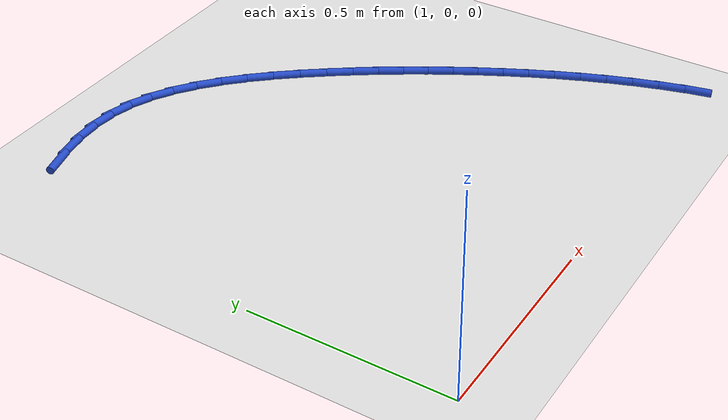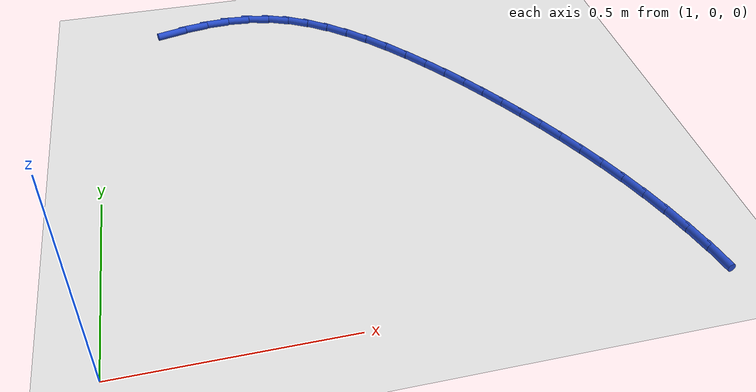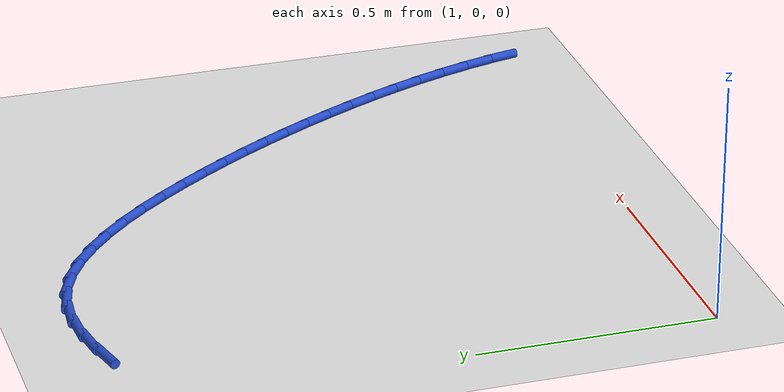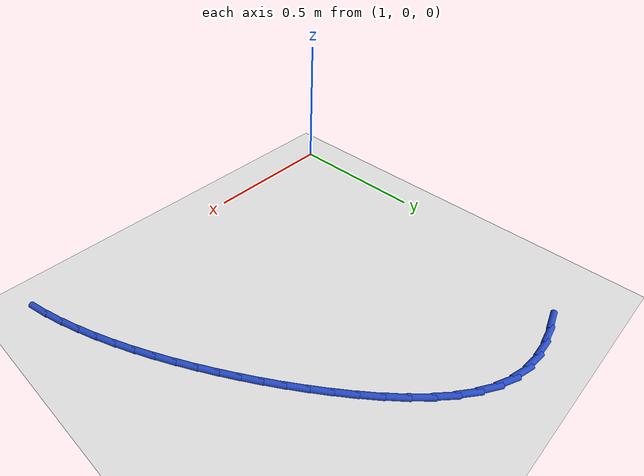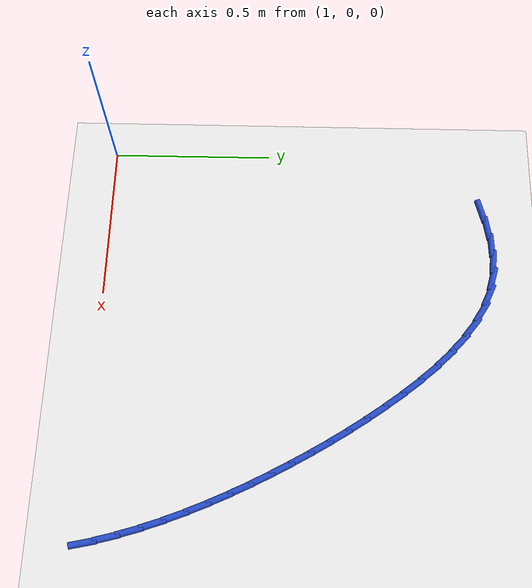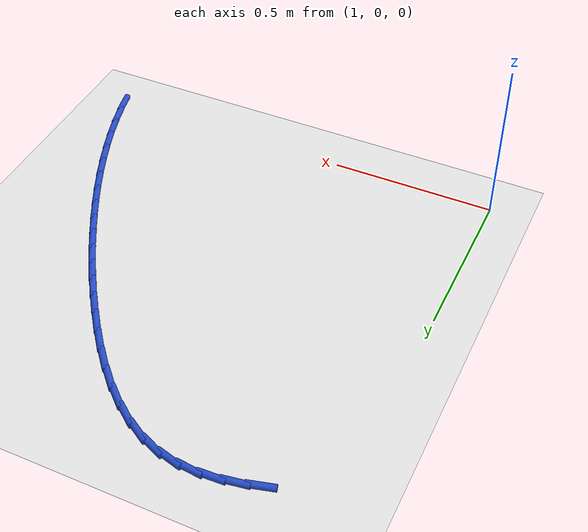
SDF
<sdf version="1.6">
 <world name="default">
  <model name="ground_plane">
   <static>1</static>
   <link name="link">
    <collision name="collision">
     <geometry><plane><normal>0 0 1</normal><size>100 100</size></plane></geometry>
     <surface><friction><ode><mu>100</mu><mu2>50</mu2></ode></friction></surface>
    </collision>
    <visual name="visual">
     <cast_shadows>0</cast_shadows>
     <geometry><plane><normal>0 0 1</normal><size>100 100</size></plane></geometry>
     <material>
      <script><uri>file://media/materials/scripts/gazebo.material</uri><name>Gazebo/WhiteGlow</name></script>
     </material>
    </visual>
   </link>
  </model>
  <model name="line">
   <link name="link_27">
    <pose>1.1911989490429773 1.1870256474002834 0.01 0 1.57 0.2594608832077236</pose>
    <collision name="collision">
     <geometry><cylinder><radius>0.01</radius><length>0.08</length></cylinder></geometry>
    </collision>
    <visual name="visual">
     <material>
      <script><name>Gazebo/Blue</name><uri>file://media/materials/scripts/gazebo.material</uri></script>
     </material>
     <geometry><cylinder><radius>0.01</radius><length>0.08</length></cylinder></geometry>
    </visual>
   </link>
   <link name="link_28">
    <pose>1.2525351682397323 1.2033070005878665 0.01 0 1.57 0.16182364925355702</pose>
    <collision name="collision">
     <geometry><cylinder><radius>0.01</radius><length>0.08</length></cylinder></geometry>
    </collision>
    <visual name="visual">
     <material>
      <script><name>Gazebo/Blue</name><uri>file://media/materials/scripts/gazebo.material</uri></script>
     </material>
     <geometry><cylinder><radius>0.01</radius><length>0.08</length></cylinder></geometry>
    </visual>
   </link>
   <link name="link_29">
    <pose>1.312951301706004 1.2131700042657934 0.01 0 1.57 0.04278497999115785</pose>
    <collision name="collision">
     <geometry><cylinder><radius>0.01</radius><length>0.08</length></cylinder></geometry>
    </collision>
    <visual name="visual">
     <material>
      <script><name>Gazebo/Blue</name><uri>file://media/materials/scripts/gazebo.material</uri></script>
     </material>
     <geometry><cylinder><radius>0.01</radius><length>0.08</length></cylinder></geometry>
    </visual>
   </link>
   <link name="link_30">
    <pose>1.3722593144005808 1.2157090458760418 0.01 0 1.57 -0.09777976853953352</pose>
    <collision name="collision">
     <geometry><cylinder><radius>0.01</radius><length>0.08</length></cylinder></geometry>
    </collision>
    <visual name="visual">
     <material>
      <script><name>Gazebo/Blue</name><uri>file://media/materials/scripts/gazebo.material</uri></script>
     </material>
     <geometry><cylinder><radius>0.01</radius><length>0.08</length></cylinder></geometry>
    </visual>
   </link>
   <link name="link_31">
    <pose>1.4302711712822531 1.21001851286059 0.01 0 1.57 -0.2563875184209497</pose>
    <collision name="collision">
     <geometry><cylinder><radius>0.01</radius><length>0.08</length></cylinder></geometry>
    </collision>
    <visual name="visual">
     <material>
      <script><name>Gazebo/Blue</name><uri>file://media/materials/scripts/gazebo.material</uri></script>
     </material>
     <geometry><cylinder><radius>0.01</radius><length>0.08</length></cylinder></geometry>
    </visual>
   </link>
   <link name="link_32">
    <pose>1.4867990748337736 1.195199320980355 0.01 0 1.57 -0.41440925485611485</pose>
    <collision name="collision">
     <geometry><cylinder><radius>0.01</radius><length>0.08</length></cylinder></geometry>
    </collision>
    <visual name="visual">
     <material>
      <script><name>Gazebo/Blue</name><uri>file://media/materials/scripts/gazebo.material</uri></script>
     </material>
     <geometry><cylinder><radius>0.01</radius><length>0.08</length></cylinder></geometry>
    </visual>
   </link>
   <link name="link_33">
    <pose>1.5416808900348749 1.1710577167864142 0.01 0 1.57 -0.5467361525584339</pose>
    <collision name="collision">
     <geometry><cylinder><radius>0.01</radius><length>0.08</length></cylinder></geometry>
    </collision>
    <visual name="visual">
     <material>
      <script><name>Gazebo/Blue</name><uri>file://media/materials/scripts/gazebo.material</uri></script>
     </material>
     <geometry><cylinder><radius>0.01</radius><length>0.08</length></cylinder></geometry>
    </visual>
   </link>
   <link name="link_34">
    <pose>1.5948027470245014 1.1387265092026653 0.01 0 1.57 -0.6534338165812552</pose>
    <collision name="collision">
     <geometry><cylinder><radius>0.01</radius><length>0.08</length></cylinder></geometry>
    </collision>
    <visual name="visual">
     <material>
      <script><name>Gazebo/Blue</name><uri>file://media/materials/scripts/gazebo.material</uri></script>
     </material>
     <geometry><cylinder><radius>0.01</radius><length>0.08</length></cylinder></geometry>
    </visual>
   </link>
   <link name="link_35">
    <pose>1.6460561076037656 1.0994850472770106 0.01 0 1.57 -0.7386556035230882</pose>
    <collision name="collision">
     <geometry><cylinder><radius>0.01</radius><length>0.08</length></cylinder></geometry>
    </collision>
    <visual name="visual">
     <material>
      <script><name>Gazebo/Blue</name><uri>file://media/materials/scripts/gazebo.material</uri></script>
     </material>
     <geometry><cylinder><radius>0.01</radius><length>0.08</length></cylinder></geometry>
    </visual>
   </link>
   <link name="link_36">
    <pose>1.6953324335737803 1.0546126800573532 0.01 0 1.57 -0.8064828060666577</pose>
    <collision name="collision">
     <geometry><cylinder><radius>0.01</radius><length>0.08</length></cylinder></geometry>
    </collision>
    <visual name="visual">
     <material>
      <script><name>Gazebo/Blue</name><uri>file://media/materials/scripts/gazebo.material</uri></script>
     </material>
     <geometry><cylinder><radius>0.01</radius><length>0.08</length></cylinder></geometry>
    </visual>
   </link>
   <link name="link_37">
    <pose>1.7425231867356563 1.0053887565915947 0.01 0 1.57 -0.8602838751886637</pose>
    <collision name="collision">
     <geometry><cylinder><radius>0.01</radius><length>0.08</length></cylinder></geometry>
    </collision>
    <visual name="visual">
     <material>
      <script><name>Gazebo/Blue</name><uri>file://media/materials/scripts/gazebo.material</uri></script>
     </material>
     <geometry><cylinder><radius>0.01</radius><length>0.08</length></cylinder></geometry>
    </visual>
   </link>
   <link name="link_38">
    <pose>1.787519828890507 0.9530926259276378 0.01 0 1.57 -0.90259621083747</pose>
    <collision name="collision">
     <geometry><cylinder><radius>0.01</radius><length>0.08</length></cylinder></geometry>
    </collision>
    <visual name="visual">
     <material>
      <script><name>Gazebo/Blue</name><uri>file://media/materials/scripts/gazebo.material</uri></script>
     </material>
     <geometry><cylinder><radius>0.01</radius><length>0.08</length></cylinder></geometry>
    </visual>
   </link>
   <link name="link_39">
    <pose>1.8302138218394441 0.8990036371133848 0.01 0 1.57 -0.9351837743574558</pose>
    <collision name="collision">
     <geometry><cylinder><radius>0.01</radius><length>0.08</length></cylinder></geometry>
    </collision>
    <visual name="visual">
     <material>
      <script><name>Gazebo/Blue</name><uri>file://media/materials/scripts/gazebo.material</uri></script>
     </material>
     <geometry><cylinder><radius>0.01</radius><length>0.08</length></cylinder></geometry>
    </visual>
   </link>
   <link name="link_40">
    <pose>1.8704966345611833 0.8444011149769022 0.01 0 1.57 -0.9607593763396648</pose>
    <collision name="collision">
     <geometry><cylinder><radius>0.01</radius><length>0.08</length></cylinder></geometry>
    </collision>
    <visual name="visual">
     <material>
      <script><name>Gazebo/Blue</name><uri>file://media/materials/scripts/gazebo.material</uri></script>
     </material>
     <geometry><cylinder><radius>0.01</radius><length>0.08</length></cylinder></geometry>
    </visual>
   </link>
   <link name="link_41">
    <pose>1.9083573620245815 0.7902349588245111 0.01 0 1.57 -0.9851972762974581</pose>
    <collision name="collision">
     <geometry><cylinder><radius>0.01</radius><length>0.08</length></cylinder></geometry>
    </collision>
    <visual name="visual">
     <material>
      <script><name>Gazebo/Blue</name><uri>file://media/materials/scripts/gazebo.material</uri></script>
     </material>
     <geometry><cylinder><radius>0.01</radius><length>0.08</length></cylinder></geometry>
    </visual>
   </link>
   <link name="link_42">
    <pose>1.9441276946122765 0.7362990266996906 0.01 0 1.57 -1.009104026588384</pose>
    <collision name="collision">
     <geometry><cylinder><radius>0.01</radius><length>0.08</length></cylinder></geometry>
    </collision>
    <visual name="visual">
     <material>
      <script><name>Gazebo/Blue</name><uri>file://media/materials/scripts/gazebo.material</uri></script>
     </material>
     <geometry><cylinder><radius>0.01</radius><length>0.08</length></cylinder></geometry>
    </visual>
   </link>
   <link name="link_43">
    <pose>1.9782144324980004 0.6821337289514744 0.01 0 1.57 -1.03175337723179</pose>
    <collision name="collision">
     <geometry><cylinder><radius>0.01</radius><length>0.08</length></cylinder></geometry>
    </collision>
    <visual name="visual">
     <material>
      <script><name>Gazebo/Blue</name><uri>file://media/materials/scripts/gazebo.material</uri></script>
     </material>
     <geometry><cylinder><radius>0.01</radius><length>0.08</length></cylinder></geometry>
    </visual>
   </link>
   <link name="link_44">
    <pose>2.0110243758554858 0.6272794759288961 0.01 0 1.57 -1.0525795661116408</pose>
    <collision name="collision">
     <geometry><cylinder><radius>0.01</radius><length>0.08</length></cylinder></geometry>
    </collision>
    <visual name="visual">
     <material>
      <script><name>Gazebo/Blue</name><uri>file://media/materials/scripts/gazebo.material</uri></script>
     </material>
     <geometry><cylinder><radius>0.01</radius><length>0.08</length></cylinder></geometry>
    </visual>
   </link>
   <link name="link_45">
    <pose>2.0429495417899757 0.5712897057302906 0.01 0 1.57 -1.073231855157118</pose>
    <collision name="collision">
     <geometry><cylinder><radius>0.01</radius><length>0.08</length></cylinder></geometry>
    </collision>
    <visual name="visual">
     <material>
      <script><name>Gazebo/Blue</name><uri>file://media/materials/scripts/gazebo.material</uri></script>
     </material>
     <geometry><cylinder><radius>0.01</radius><length>0.08</length></cylinder></geometry>
    </visual>
   </link>
   <link name="link_46">
    <pose>2.0740700925833737 0.5139926821073793 0.01 0 1.57 -1.0957037242018839</pose>
    <collision name="collision">
     <geometry><cylinder><radius>0.01</radius><length>0.08</length></cylinder></geometry>
    </collision>
    <visual name="visual">
     <material>
      <script><name>Gazebo/Blue</name><uri>file://media/materials/scripts/gazebo.material</uri></script>
     </material>
     <geometry><cylinder><radius>0.01</radius><length>0.08</length></cylinder></geometry>
    </visual>
   </link>
   <link name="link_47">
    <pose>2.1041692193597368 0.45547837806370406 0.01 0 1.57 -1.120199153154392</pose>
    <collision name="collision">
     <geometry><cylinder><radius>0.01</radius><length>0.08</length></cylinder></geometry>
    </collision>
    <visual name="visual">
     <material>
      <script><name>Gazebo/Blue</name><uri>file://media/materials/scripts/gazebo.material</uri></script>
     </material>
     <geometry><cylinder><radius>0.01</radius><length>0.08</length></cylinder></geometry>
    </visual>
   </link>
   <link name="link_48">
    <pose>2.133018309139518 0.395847169105009 0.01 0 1.57 -1.1468602637845224</pose>
    <collision name="collision">
     <geometry><cylinder><radius>0.01</radius><length>0.08</length></cylinder></geometry>
    </collision>
    <visual name="visual">
     <material>
      <script><name>Gazebo/Blue</name><uri>file://media/materials/scripts/gazebo.material</uri></script>
     </material>
     <geometry><cylinder><radius>0.01</radius><length>0.08</length></cylinder></geometry>
    </visual>
   </link>
   <link name="link_49">
    <pose>2.1603887489431646 0.3351994307370376 0.01 0 1.57 -1.175845290590953</pose>
    <collision name="collision">
     <geometry><cylinder><radius>0.01</radius><length>0.08</length></cylinder></geometry>
    </collision>
    <visual name="visual">
     <material>
      <script><name>Gazebo/Blue</name><uri>file://media/materials/scripts/gazebo.material</uri></script>
     </material>
     <geometry><cylinder><radius>0.01</radius><length>0.08</length></cylinder></geometry>
    </visual>
   </link>
   <link name="link_50">
    <pose>2.1860519257911286 0.2736355384655342 0.01 0 1.57 -1.2073268051802266</pose>
    <collision name="collision">
     <geometry><cylinder><radius>0.01</radius><length>0.08</length></cylinder></geometry>
    </collision>
    <visual name="visual">
     <material>
      <script><name>Gazebo/Blue</name><uri>file://media/materials/scripts/gazebo.material</uri></script>
     </material>
     <geometry><cylinder><radius>0.01</radius><length>0.08</length></cylinder></geometry>
    </visual>
   </link>
   <link name="link_51">
    <pose>2.20977922670386 0.2112558677962424 0.01 0 1.57 -1.24148899284228</pose>
    <collision name="collision">
     <geometry><cylinder><radius>0.01</radius><length>0.08</length></cylinder></geometry>
    </collision>
    <visual name="visual">
     <material>
      <script><name>Gazebo/Blue</name><uri>file://media/materials/scripts/gazebo.material</uri></script>
     </material>
     <geometry><cylinder><radius>0.01</radius><length>0.08</length></cylinder></geometry>
    </visual>
   </link>
   <link name="link_52">
    <pose>2.23134203870181 0.14816079423490605 0.01 0 1.57 -1.2785235377972304</pose>
    <collision name="collision">
     <geometry><cylinder><radius>0.01</radius><length>0.08</length></cylinder></geometry>
    </collision>
    <visual name="visual">
     <material>
      <script><name>Gazebo/Blue</name><uri>file://media/materials/scripts/gazebo.material</uri></script>
     </material>
     <geometry><cylinder><radius>0.01</radius><length>0.08</length></cylinder></geometry>
    </visual>
   </link>
   <link name="link_53">
    <pose>2.2505117488054274 0.08445069328726906 0.01 0 1.57 -1.3186236037371002</pose>
    <collision name="collision">
     <geometry><cylinder><radius>0.01</radius><length>0.08</length></cylinder></geometry>
    </collision>
    <visual name="visual">
     <material>
      <script><name>Gazebo/Blue</name><uri>file://media/materials/scripts/gazebo.material</uri></script>
     </material>
     <geometry><cylinder><radius>0.01</radius><length>0.08</length></cylinder></geometry>
    </visual>
   </link>
   <link name="link_54">
    <pose>2.267059744035164 0.02022594045907536 0.01 0 1.57 -1.361975352012673</pose>
    <collision name="collision">
     <geometry><cylinder><radius>0.01</radius><length>0.08</length></cylinder></geometry>
    </collision>
    <visual name="visual">
     <material>
      <script><name>Gazebo/Blue</name><uri>file://media/materials/scripts/gazebo.material</uri></script>
     </material>
     <geometry><cylinder><radius>0.01</radius><length>0.08</length></cylinder></geometry>
    </visual>
   </link>
  </model>
 </world>
</sdf>
